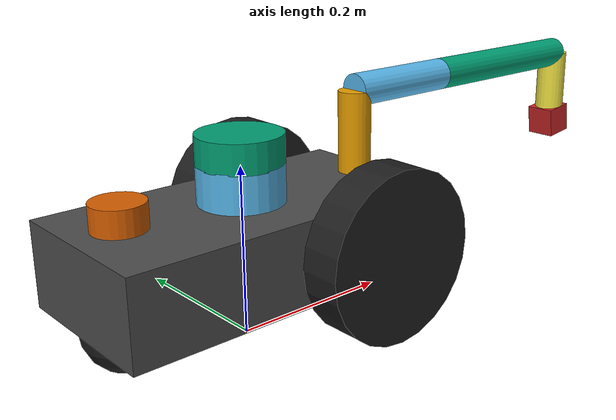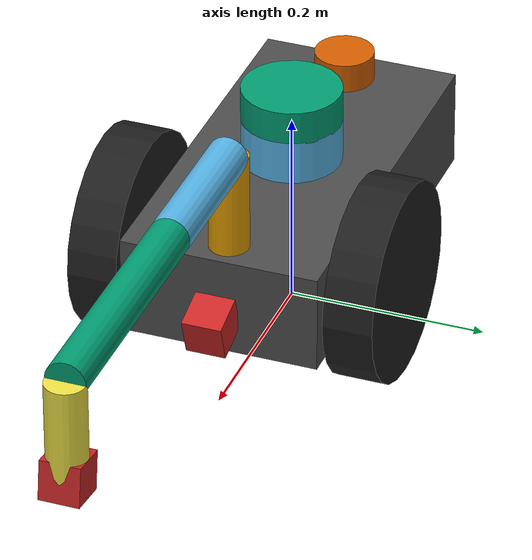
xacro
<?xml version="1.0"?>
   <!-- Cette urdf defini physiquement le robot. Il est associe
   a robot.wheels.xacro et a arm.xacro qui definissent respectivement ses roues et son bras articule -->

<robot name="monRobot" xmlns:xacro="http://ros.org/wiki/xacro">
  <xacro:include filename="$(find robot_description)/urdf/robot.wheels.xacro"/>
  <xacro:include filename="$(find robot_description)/urdf/arm.xacro"/>

  <xacro:macro name="default_inertial" params="mass">
    <inertial>
      <mass value="${mass}" />
      <inertia ixx="0.01" ixy="0.0001" ixz="0.0001" iyy="0.01" iyz="0.0001" izz="0.01" />
    </inertial>
  </xacro:macro>

   <!-- Robot -->
   <link name="base_link"/> <!--permet d'utiliser Move Base -->

   <joint name="base_joint" type="fixed">
      <parent link="base_link"/>
      <child link="chassis" />
      <origin xyz="0 0 0.01" rpy="0 0 0"/>
   </joint>

   <!-- Chassis-->
   <link name="chassis">
      <collision>
         <origin xyz="0 0 .1" rpy="0 0 0"/>
         <geometry>
            <box size="0.4 0.2 0.1"/>
         </geometry>
      </collision>
      <visual>
         <origin xyz="0 0 .1" rpy="0 0 0"/>
         <geometry>
            <box size="0.4 0.2 0.1"/>
         </geometry>
      </visual>
     <xacro:default_inertial mass="2.0"/>
   </link>

   <!-- Roue Libre-->
   <link name="caster">
      <collision>
         <geometry>
            <sphere radius="0.05"/>
         </geometry>
      </collision>
      <visual>
         <geometry>
           <sphere radius="0.05"/>
         </geometry>
      </visual>
      <xacro:default_inertial mass="0.01"/>
   </link>

   <!-- Joint Chassis-Roue Libre-->
   <joint name="caster_to_chassis" type="fixed">
      <origin xyz="-0.15 0 0.05" rpy="0 0 0"/>
      <child link="caster"/>
      <parent link="chassis"/>
   </joint>

   <!-- Roue Gauche-->
   <link name="left_wheel">
      <collision>
         <origin xyz="0 0 0" rpy="0 1.5707 1.5707"/>
         <geometry>
            <cylinder radius="0.1" length="0.05"/>
         </geometry>
      </collision>
      <visual>
         <origin xyz="0 0 0" rpy="0 1.5707 1.5707"/>
         <geometry>
              <cylinder radius="0.1" length="0.05"/>
         </geometry>
      </visual>
      <xacro:default_inertial mass="0.3"/>
   </link>

   <!-- Roue Droite-->
   <link name="right_wheel">
      <collision>
         <origin xyz="0 0 0" rpy="0 1.5707 1.5707"/>
         <geometry>
            <cylinder radius="0.1" length="0.05"/>
         </geometry>
      </collision>
      <visual>
         <origin xyz="0 0 0" rpy="0 1.5707 1.5707"/>
         <geometry>
            <cylinder radius="0.1" length="0.05"/>
         </geometry>
      </visual>
      <xacro:default_inertial mass="0.3"/>
   </link>

   <!-- Joint Chassis-Roue Gauche-->
   <joint type="continuous" name="left_wheel_hinge">
      <origin xyz="0.1 0.13 0.1" rpy="0 0 0"/>
      <child link="left_wheel"/>
      <parent link="chassis"/>
      <axis xyz="0 1 0"/>
   </joint>

   <!-- Joint Chassis-Roue Right-->
   <joint type="continuous" name="right_wheel_hinge">
      <origin xyz="0.1 -0.13 0.1" rpy="0 0 0"/>
      <child link="right_wheel"/>
      <parent link="chassis"/>
      <axis xyz="0 1 0"/>
   </joint>

   <!-- Plugin Roues -->
   <gazebo>
      <plugin name="wheels_controller" filename="libgazebo_ros_diff_drive.so">
         <commandTopic>cmd_vel</commandTopic>
         <odometryTopic>rrbot/odom_wheel</odometryTopic>
         <odometryFrame>odom</odometryFrame>
         <odometrySource>world</odometrySource>
         <publishOdomTF>true</publishOdomTF>
         <!-- ENTER BASE LINK NAME -->
         <robotBaseFrame>base_link</robotBaseFrame>
         <publishWheelTF>false</publishWheelTF>
         <publishTf>true</publishTf>
         <publishWheelJointState>true</publishWheelJointState>
         <legacyMode>false</legacyMode>
         <updateRate>30</updateRate>
         <!-- ENTER LEFT JOINT NAME -->
         <leftJoint>left_wheel_hinge</leftJoint>
         <!-- ENTER RIGHT JOINT NAME -->
         <rightJoint>right_wheel_hinge</rightJoint>
         <wheelSeparation>0.31</wheelSeparation>
         <wheelDiameter>0.1</wheelDiameter>
         <wheelAcceleration>0.1</wheelAcceleration>
         <wheelTorque>10</wheelTorque>
         <rosDebugLevel>na</rosDebugLevel>
      </plugin>
   </gazebo>

  <!-- Arm Joint -->
  <joint name="chassis_arm_joint" type="fixed">
    <axis xyz="0 0 1"/>
    <origin rpy="0 0 0" xyz="${arm_position} 0 0.2"/>
    <parent link="chassis"/>
    <child link="arm_1_link"/>
  </joint>

   <!-- Joint Chassis-Support Hokuyo-->
   <joint name="support_hokuyo_joint" type="fixed">
      <axis xyz="0 1 -0.04" />
      <origin xyz="0 0 0.20" rpy="0 0 0"/>
      <parent link="chassis"/>
      <child link="hokuyo_support"/>
   </joint>

   <!-- Hokuyo Support -->
   <link name="hokuyo_support">
      <collision>
         <origin xyz="0 0 -0.03" rpy="0 0 0"/>
         <geometry>
    	    <cylinder radius="0.05" length="0.05"/>
         </geometry>
      </collision>
      <visual>
         <origin xyz="0 0 -0.03" rpy="0 0 0"/>
         <geometry>
            <cylinder radius="0.05" length="0.05"/>
         </geometry>
      </visual>
      <inertial>
         <mass value="1e-5" />
         <origin xyz="0 0 0" rpy="0 0 0"/>
         <inertia ixx="1e-6" ixy="0" ixz="0" iyy="1e-6" iyz="0" izz="1e-6" />
      </inertial>
   </link>

   <!-- Joint Chassis-Hokuyo-->
   <joint name="hokuyo_joint" type="fixed">
      <axis xyz="0 1 0" />
      <origin xyz="0 0 0.041" rpy="0 0 0"/>
      <parent link="hokuyo_support"/>
      <child link="hokuyo_link"/>
   </joint>

   <!-- Hokuyo Laser -->
   <link name="hokuyo_link">
      <collision>
         <origin xyz="0 0 -0.03" rpy="0 0 0"/>
         <geometry>
    	    <cylinder radius="0.05" length="0.033"/>
         </geometry>
      </collision>
      <visual>
         <origin xyz="0 0 -0.03" rpy="0 0 0"/>
         <geometry>
            <cylinder radius="0.05" length="0.035"/>
         </geometry>
      </visual>
      <inertial>
         <mass value="1e-5" />
         <origin xyz="0 0 0" rpy="0 0 0"/>
         <inertia ixx="1e-6" ixy="0" ixz="0" iyy="1e-6" iyz="0" izz="1e-6" />
      </inertial>
   </link>

   <!-- Plugin Hokuyo -->
   <gazebo reference="hokuyo_link">
      <sensor type="ray" name="head_hokuyo_sensor">
         <pose>0 0 0.5 0 0 0</pose>
         <visualize>false</visualize>
         <update_rate>2</update_rate>
         <ray>
            <scan>
               <horizontal>
                  <samples>50</samples>
                  <resolution>1</resolution>
                  <min_angle>-3.1415</min_angle>
                  <max_angle>3.1415</max_angle>
               </horizontal>
            </scan>
            <range>
               <min>0.10</min>
               <max>30.0</max>
               <resolution>0.01</resolution>
            </range>
            <noise>
               <type>gaussian</type>
               <mean>0.0</mean>
               <stddev>0.01</stddev>
            </noise>
         </ray>
         <plugin name="gazebo_ros_head_hokuyo_controller" filename="libgazebo_ros_laser.so">
            <topicName>/scan</topicName>
            <frameName>hokuyo_link</frameName>
         </plugin>
      </sensor>
   </gazebo>

   <!-- joint Chassis-Camera -->
   <joint name="camera_joint" type="fixed">
      <origin xyz="0.22 0 0.09" rpy="0 0.3 0"/>
      <parent link="chassis"/>
      <child link="camera_link"/>
   </joint>

   <!-- Chassis-Camera -->
   <link name="camera_link">
      <collision>
         <origin xyz="0 0 0" rpy="0 0 0"/>
         <geometry>
            <box size="0.04 0.04 0.04"/>
         </geometry>
      </collision>
      <visual>
         <origin xyz="0 0 0" rpy="0 0 0"/>
         <geometry>
            <box size="0.04 0.04 0.04"/>
         </geometry>
         <material name="red"/>
      </visual>
      <inertial>
         <mass value="1e-5" />
         <origin xyz="0 0 0" rpy="0 0 0"/>
         <inertia ixx="1e-6" ixy="0" ixz="0" iyy="1e-6" iyz="0" izz="1e-6" />
      </inertial>
   </link>
   <xacro:property name="camera_link" value="0.4" /> <!--size of 'camera' box-->

   <!-- Plugin Chassis-Camera -->
   <gazebo reference="camera_link">
      <sensor type="camera" name="camera1">
         <update_rate>30.0</update_rate>
         <camera name="head">
            <horizontal_fov>1.3962634</horizontal_fov>
            <image>
               <width>800</width>
               <height>800</height>
               <format>R8G8B8</format>
            </image>
            <clip>
               <near>0.02</near>
               <far>300</far>
            </clip>
            <noise>
               <type>gaussian</type>
               <!-- Noise is sampled independently per pixel on each frame.
               That pixel's noise value is added to each of its color
               channels, which at that point lie in the range [0,1]. -->
               <mean>0.0</mean>
               <stddev>0.007</stddev>
            </noise>
         </camera>
         <plugin name="camera_controller" filename="libgazebo_ros_camera.so">
            <alwaysOn>true</alwaysOn>
            <updateRate>0.0</updateRate>
            <cameraName>rrbot/camera1</cameraName>
            <imageTopicName>image_raw</imageTopicName>
            <cameraInfoTopicName>camera_info</cameraInfoTopicName>
            <frameName>camera_link</frameName>
            <hackBaseline>0.07</hackBaseline>
            <distortionK1>0.0</distortionK1>
            <distortionK2>0.0</distortionK2>
            <distortionK3>0.0</distortionK3>
            <distortionT1>0.0</distortionT1>
            <distortionT2>0.0</distortionT2>
         </plugin>
      </sensor>
   </gazebo>

<!-- joint Bras-Camera -->
   <joint name="cameraBras_joint" type="fixed">
      <origin xyz="0 0 ${length_4}" rpy="0 -1.7 0"/>
      <parent link="laser"/>
      <child link="cameraBras_link"/>
   </joint>

   <!-- Camera -->
   <link name="cameraBras_link">
      <collision>
         <origin xyz="0 0 0" rpy="0 0 0"/>
         <geometry>
            <box size="0.04 0.04 0.04"/>
         </geometry>
      </collision>
      <visual>
         <origin xyz="0 0 0" rpy="0 0 0"/>
         <geometry>
            <box size="0.04 0.04 0.04"/>
         </geometry>
         <material name="red"/>
      </visual>
      <inertial>
         <mass value="1e-5" />
         <origin xyz="0 0 0" rpy="0 0 0"/>
         <inertia ixx="1e-6" ixy="0" ixz="0" iyy="1e-6" iyz="0" izz="1e-6" />
      </inertial>
   </link>
   <xacro:property name="cameraBras_link" value="0.1" /> <!-- Size of square 'camera' box -->

   <!-- Plugin Camera -->
   <gazebo reference="cameraBras_link">
      <sensor type="camera" name="cameraBras">
         <update_rate>30.0</update_rate>
         <camera name="head">
            <horizontal_fov>1.3962634</horizontal_fov>
            <image>
               <width>800</width>
               <height>800</height>
               <format>R8G8B8</format>
            </image>
            <clip>
               <near>0.02</near>
               <far>300</far>
            </clip>
            <noise>
               <type>gaussian</type>
               <!-- Noise is sampled independently per pixel on each frame.
               That pixel's noise value is added to each of its color
               channels, which at that point lie in the range [0,1]. -->
               <mean>0.0</mean>
               <stddev>0.007</stddev>
            </noise>
         </camera>
         <plugin name="camera_controller" filename="libgazebo_ros_camera.so">
            <alwaysOn>true</alwaysOn>
            <updateRate>0.0</updateRate>
            <cameraName>rrbot/cameraBras</cameraName>
            <imageTopicName>image_raw</imageTopicName>
            <cameraInfoTopicName>camera_info</cameraInfoTopicName>
            <frameName>camera_link</frameName>
            <hackBaseline>0.07</hackBaseline>
            <distortionK1>0.0</distortionK1>
            <distortionK2>0.0</distortionK2>
            <distortionK3>0.0</distortionK3>
            <distortionT1>0.0</distortionT1>
            <distortionT2>0.0</distortionT2>
         </plugin>
      </sensor>
   </gazebo>

   <!-- Joint Chassis-GPS-->
   <joint name="gps_joint" type="fixed">
      <axis xyz="0 0 0" />
      <origin xyz="-0.15 0 0.17" rpy="0 0 0"/>
      <parent link="chassis"/>
      <child link="gps_link"/>
   </joint>

   <!-- GPS -->
   <link name="gps_link">
      <collision>
         <origin xyz="0 0 0" rpy="0 0 0"/>
         <geometry>
    	    <cylinder radius="0.03" length="0.03"/>
         </geometry>
      </collision>
      <visual>
         <origin xyz="0 0 0" rpy="0 0 0"/>
         <geometry>
            <cylinder radius="0.03" length="0.03"/>
         </geometry>
      </visual>
      <inertial>
         <mass value="1e-5" />
         <origin xyz="0 0 0" rpy="0 0 0"/>
         <inertia ixx="1e-6" ixy="0" ixz="0" iyy="1e-6" iyz="0" izz="1e-6" />
      </inertial>
   </link>

   <!-- Plugin GPS -->
   <gazebo>
      <plugin name="novatel_gps_sim" filename="libhector_gazebo_ros_gps.so">
         <alwaysOn>true</alwaysOn>
         <updateRate>19.9</updateRate>
         <bodyName>base_link</bodyName>
         <robotNamespace>rrbot/gps</robotNamespace>
         <topicName>fix</topicName>
         <veloctyTopicName>fix_velocity</veloctyTopicName>
         <drift>5.0 5.0 5.0</drift>
         <gaussianNoise>0.1 0.1 0.1</gaussianNoise>
	 <velocityDrift>0 0 0</velocityDrift>
         <velocityGaussianNoise>0.1 0.1 0.1</velocityGaussianNoise>
      </plugin>
   </gazebo>

   <!-- Joint Chassis-Sonar-->

   <!-- Sonar -->

</robot>

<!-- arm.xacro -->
<robot name="mon_futur_robot" xmlns:xacro="http://ros.org/wiki/xacro">
  <xacro:include filename="$(find robot_description)/urdf/robot.wheels.xacro"/>

  <!-- Constants for robot dimensions -->
  <xacro:property name="PI" value="3.1415926535897931"/>
  <xacro:property name="mass_first_part" value="0.01" /> <!-- arbitrary value for mass -->
  <xacro:property name="length_1" value="0.1" /> <!-- first arm -->
  <xacro:property name="length_2" value="0.15" /> <!-- second arm -->
  <xacro:property name="length_3" value="0.25" /> <!-- third arm -->
  <xacro:property name="length_4" value="0.1" /> <!-- laser arm -->

  <xacro:property name="arm_position" value="0.17" /> <!-- first arm -->
  <xacro:property name="radius" value="0.02" /> <!-- Link 3 -->
  <xacro:property name="camera_link" value="0.05" /> <!-- Size of square 'camera' box -->
  <xacro:property name="axel_offset" value="0.05" /> <!-- Space btw top of beam and the each joint -->

  <xacro:macro name="default_inertial" params="mass">
    <inertial>
      <mass value="${mass}" />
      <inertia ixx="0.01" ixy="0.0001" ixz="0.0001" iyy="0.01" iyz="0.0001" izz="0.01" />
    </inertial>
  </xacro:macro>

<!-- Mobile arm -->

<!-- First part -->
  <link name="arm_1_link">
    <collision>
      <origin rpy="0 0 0" xyz="0 0 0"/>
      <geometry>
        <cylinder length="${length_1}" radius="${radius}"/>
      </geometry>
    </collision>
    <visual>
      <origin rpy="0 0 0" xyz="0 0 0"/>
      <geometry>
        <cylinder length="${length_1}" radius="${radius}"/>
      </geometry>
    </visual>
    <inertial>
      <mass value="0.01"/>
      <origin rpy="0 0 0" xyz="0 0 0"/>
      <inertia ixx="0.001" ixy="0" ixz="0" iyy="0.001" iyz="0" izz="0.001"/>
    </inertial>
  </link>

  <!--xacro:property name="arm_1_link" value="0.05" /--> <!-- Size of square 'camera' box -->

  <joint name="joint_12" type="revolute">
    <parent link="arm_1_link"/>
    <child link="arm_2_link"/>
    <origin xyz="0 0 ${length_1/2}" rpy="0 1.5707 0"/>
    <axis xyz="1 0 0"/>
    <limit effort="5.0" lower="-3" upper="3.2" velocity="1"/>

    <!--dynamics damping="0.7"/-->
  </joint>

 <!--second Link -->
  <link name="arm_2_link">
    <visual>
      <origin xyz="0 0 ${length_2 / 2}" rpy="0 0 0"/>
      <geometry>
        <cylinder length="${length_2}" radius="${radius}"/>
      </geometry>
    </visual>

    <inertial>
      <mass value="0.01"/>
      <origin rpy="0 0 0" xyz="0 0 0"/>
      <inertia ixx="0.001" ixy="0.001" ixz="0.001" iyy="0.001" iyz="0.001" izz="0.001"/>
    </inertial>
  </link>

  <joint name="joint_23" type="prismatic">
    <parent link="arm_2_link"/>
    <child link="arm_3_link"/>
    <origin xyz="0 0 ${length_2}" rpy="0 0 0"/>
    <axis xyz="0 0 1"/>
    <limit effort="10.0" lower="-1.0" upper="1.0" velocity="0.5"/>

  </joint>

   <!--Third Link Verin entre 2 et 3-->

  <link name="arm_3_link">
    <visual>
      <origin xyz="0 0 ${length_3 / 2}" rpy="0 0 0"/>
      <geometry>
        <cylinder length="${length_3}" radius="${radius}"/>
      </geometry>
    </visual>

    <inertial>
      <mass value="0.01"/>
      <origin rpy="0 0 0" xyz="0 0 0"/>
      <inertia ixx="0.001" ixy="0.001" ixz="0.001" iyy="0.001" iyz="0.001" izz="0.001"/>
    </inertial>
</link>

  <gazebo reference="arm_3_link">
    <visual>
      <material>
        <ambient>0.25 0.25 0.80 1</ambient>
        <diffuse>0.25 0.25 0.80 1</diffuse>
      </material>
    </visual>
  </gazebo>

<joint name="joint_34" type="fixed">
    <origin xyz="0 0 ${length_3}" rpy="0 1.5707 0"/>
    <child link="laser"/>
    <parent link="arm_3_link"/>
  </joint>

    <!-- 4th Link LASER-->

  <link name="laser">
    <collision>
      <origin xyz="0 0 ${length_4 / 2}" rpy="0 0 0"/>
      <geometry>
        <cylinder length="${length_4}" radius="${radius}"/>
      </geometry>
    </collision>

    <visual>
      <origin xyz="0 0 ${length_4 / 2}" rpy="0 0 0"/>
      <geometry>
        <cylinder length="${length_4}" radius="${radius}"/>
      </geometry>
    </visual>

    <inertial>
      <mass value="0.01"/>
      <origin rpy="0 0 0" xyz="0 0 0"/>
      <inertia ixx="0.001" ixy="0.001" ixz="0.001" iyy="0.001" iyz="0.001" izz="0.001"/>
    </inertial>
  </link>

  <!-- Controllers -->

  <gazebo>
    <plugin name="gazebo_ros_control" filename="libgazebo_ros_control.so">
      <robotNamespace>/rrbot</robotNamespace>
    </plugin>
  </gazebo>

  <transmission name="tran1">
    <type>transmission_interface/SimpleTransmission</type>
    <joint name="joint_12">
      <hardwareInterface>hardware_interface/EffortJointInterface</hardwareInterface>
    </joint>
    <actuator name="motor1">
      <hardwareInterface>hardware_interface/EffortJointInterface</hardwareInterface>
      <mechanicalReduction>1</mechanicalReduction>
    </actuator>
  </transmission>

  <transmission name="tran2">
    <type>transmission_interface/SimpleTransmission</type>
    <joint name="joint_23">
      <hardwareInterface>hardware_interface/EffortJointInterface</hardwareInterface>
    </joint>
    <actuator name="motor2">
      <hardwareInterface>hardware_interface/EffortJointInterface</hardwareInterface>
      <mechanicalReduction>1</mechanicalReduction>
    </actuator>
</transmission>

</robot>
